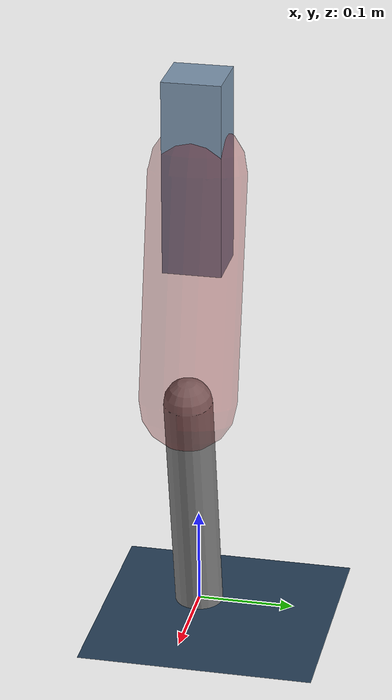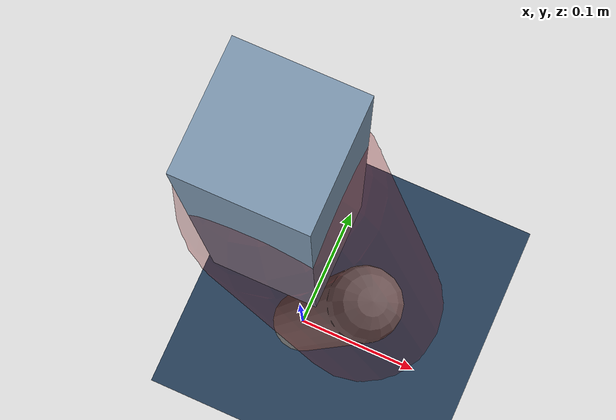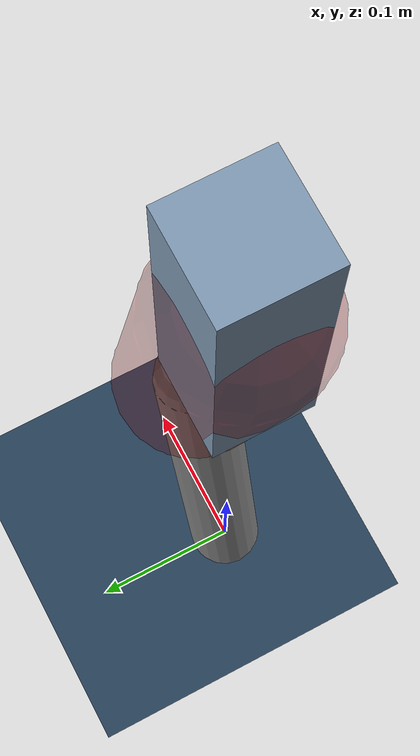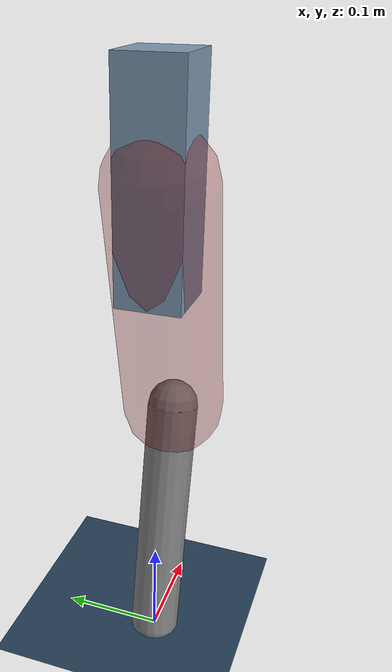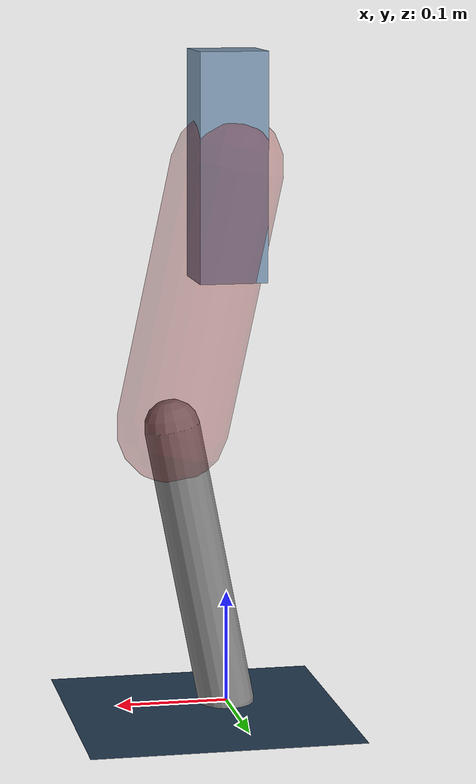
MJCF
<mujoco model="Hopper2D">
	<compiler inertiafromgeom="true" angle="radian" />
	<option timestep="0.001" integrator="implicit" cone="elliptic" solver="Newton" tolerance="1e-10" />

	<default>
		<geom contype="1" conaffinity="1" condim="3" friction="2 0.005 0.0001" solref="0.005 1" />
		<joint limited="true" damping="0.1" />
	</default>

	<asset>
		<texture name="skybox" type="skybox" builtin="gradient" rgb1=".4 .6 .8" rgb2="0 0 0" width="800" height="800" />
		<texture name="grid" type="2d" builtin="checker" rgb1=".1 .2 .3" rgb2=".2 .3 .4" width="300" height="300" mark="edge" markrgb=".2 .3 .4" />
		<material name="ground" texture="grid" texrepeat="1 1" texuniform="true" reflectance="0.1" />
		<material name="leg" rgba="0.5 0.6 0.7 1" />
	</asset>

	<worldbody>

		<geom name="floor" type="plane" size="5 5 0.25" material="ground" />

		<light directional="false" diffuse="0.8 0.8 0.8" specular="0.3 0.3 0.3" pos="0 0 2" dir="0 0 -1" />
		<light mode="targetbodycom" target="base" directional="false" diffuse="0.8 0.8 0.8" specular="0.3 0.3 0.3" pos="0 0 2" dir="0 0 -1" />

		<camera name="fixed" pos="0 -2 1" xyaxes="1 0 0 0 0 1" />
		<camera name="tracking" mode="trackcom" pos="0 -3 1" />

		<body name="root" pos="0 0 0.48263641862991097">
			<joint name="slide_x" type="slide" axis="1 0 0" range="-100 100" />
			<joint name="slide_z" type="slide" axis="0 0 1" range="0 10" />

			<body name="base" pos="0 0 0">
				<geom name="torso" type="box" size="0.03 0.03 0.1" mass="3.2039999999999997" material="leg" />

				<body name="link1" pos="0 0 0" euler="0 1.3597029766295252 0">
					<joint type="hinge" axis="0 -1 0" pos="0 0 0" name="hinge1" limited="true" range="-3.14 3.14" stiffness="0" damping="0.1" />
					<geom name="thigh" type="capsule" fromto="0 0 0 0.2354211479510105 0 0" size="0.05" rgba="0.5 0 0 0.3" mass="0.8188528698775263" />

					<body name="link2" pos="0.2354211479510105 0 0" euler="0 0.4040642382806278 0">
						<joint type="hinge" axis="0 -1 0" pos="0 0 0" name="hinge2" limited="true" range="-3.14 3.14" stiffness="0" damping="0.1" />
						<geom name="shank" type="capsule" fromto="0 0 0 0.2572152706789005 0 0" size="0.025" mass="0.44847221654312036" />

					</body>
				</body>
			</body>
		</body>
	</worldbody>

	<actuator>
		<motor name="torque1" joint="hinge1" ctrlrange="-139.49474779345394 139.49474779345394" ctrllimited="true" gear="1" />
		<motor name="torque2" joint="hinge2" ctrlrange="-129.99222014333785 129.99222014333785" ctrllimited="true" gear="1" />
	</actuator>
</mujoco>
